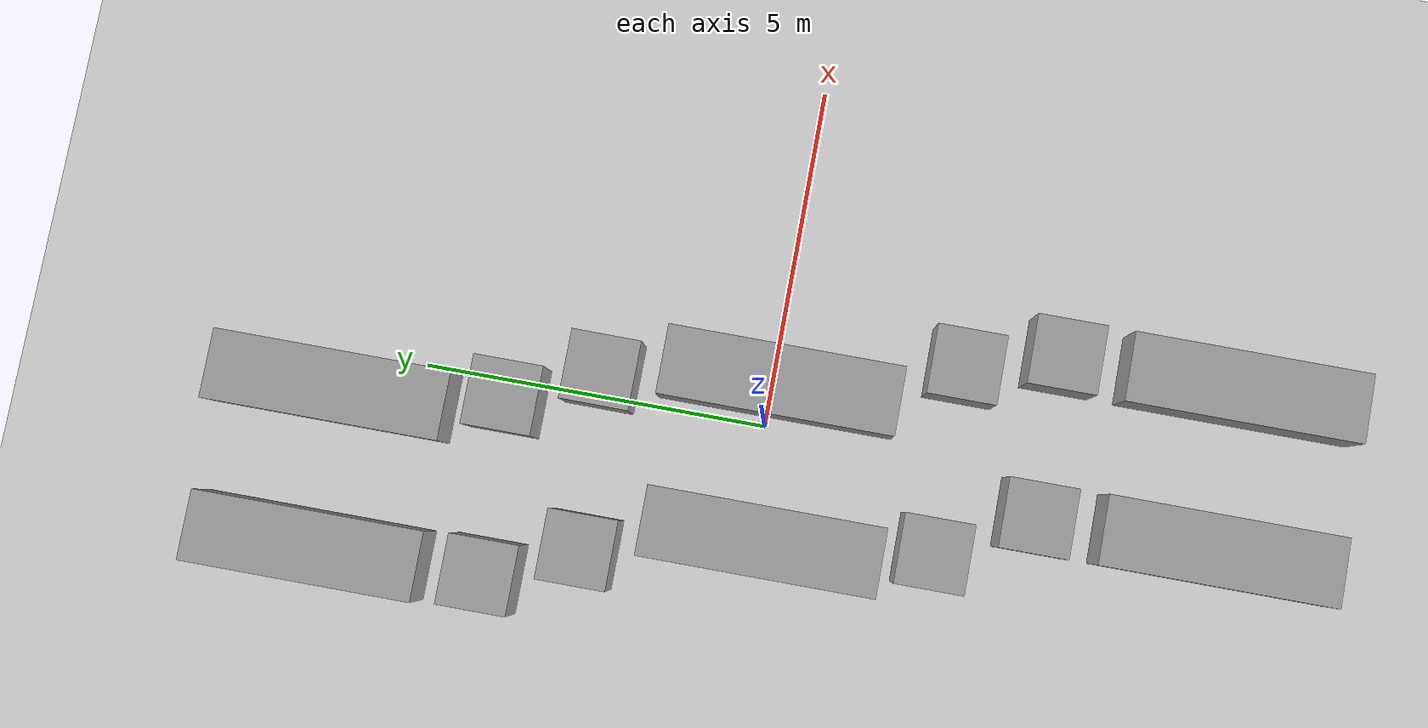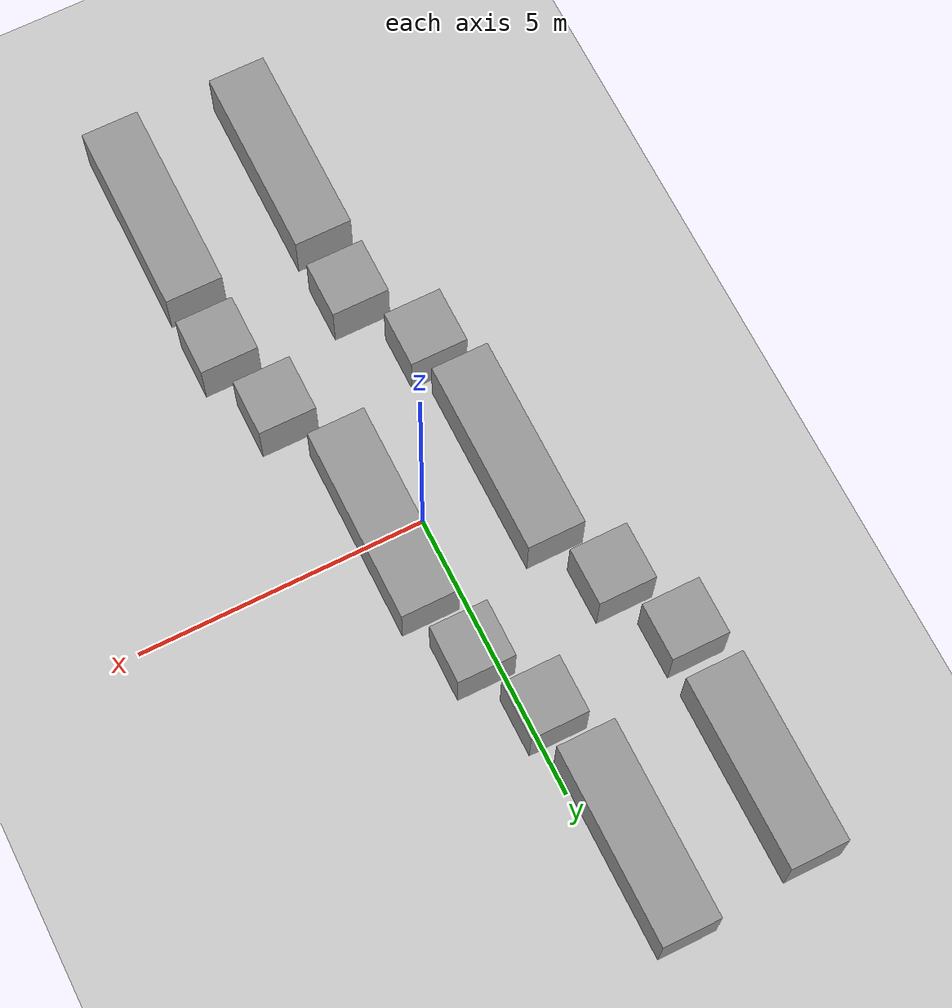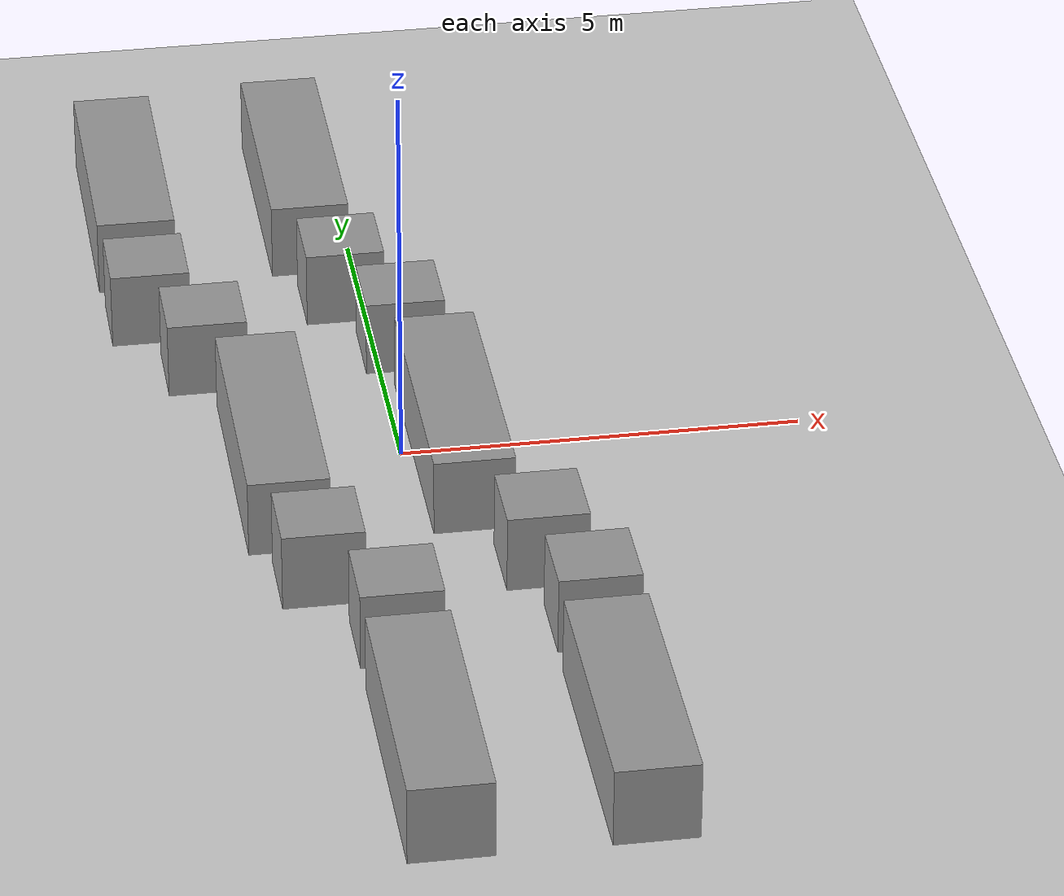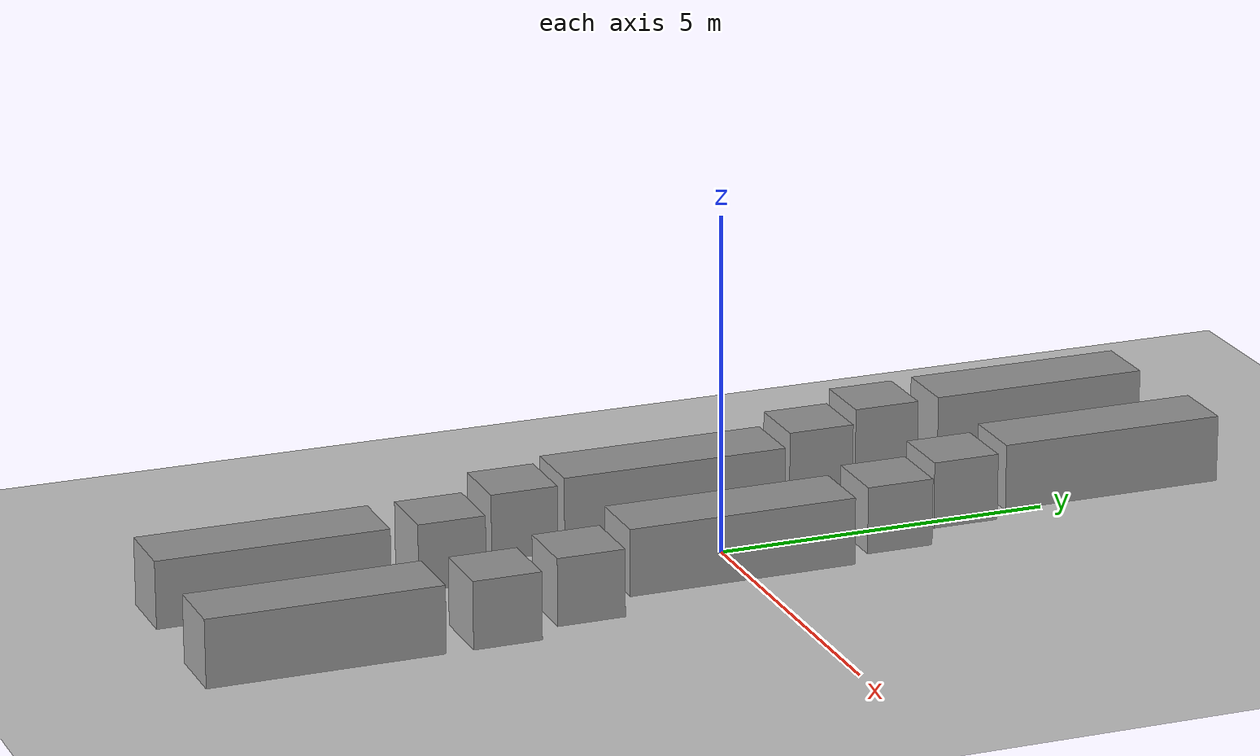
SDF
<sdf version="1.6">
 <world name="default">
  <light name="sun" type="directional">
   <pose>0 0 10 0 -0 0</pose>
   <diffuse>0.8 0.8 0.8 1</diffuse>
   <specular>0.1 0.1 0.1 1</specular>
   <attenuation>
    <range>1000</range>
    <constant>0.9</constant>
    <linear>0.01</linear>
    <quadratic>0.001</quadratic>
   </attenuation>
   <direction>-0.5 0.5 -1</direction>
  </light>
  <model name="ground_plane">
   <static>1</static>
   <link name="link">
    <collision name="collision">
     <geometry><plane><normal>0 0 1</normal><size>100 100</size></plane></geometry>
     <surface><friction><ode><mu>100</mu><mu2>50</mu2></ode></friction></surface>
    </collision>
    <visual name="visual">
     <cast_shadows>0</cast_shadows>
     <geometry><plane><normal>0 0 1</normal><size>100 100</size></plane></geometry>
     <material>
      <script><uri>file://media/materials/scripts/gazebo.material</uri><name>Gazebo/Grey</name></script>
     </material>
    </visual>
   </link>
  </model>
  <gravity>0 0 -1.62</gravity>
  <magnetic_field>6e-06 2.3e-05 -4.2e-05</magnetic_field>
  <atmosphere type="adiabatic"/>
  <physics name="default_physics" default="0" type="ode">
   <max_step_size>0.001</max_step_size>
   <real_time_factor>1</real_time_factor>
   <real_time_update_rate>1000</real_time_update_rate>
  </physics>
  <scene><ambient>0.4 0.4 0.4 1</ambient><background>0.7 0.7 0.7 1</background><shadows>1</shadows></scene>
  <spherical_coordinates>
   <surface_model>EARTH_WGS84</surface_model>
   <latitude_deg>0</latitude_deg>
   <longitude_deg>0</longitude_deg>
   <elevation>0</elevation>
   <heading_deg>0</heading_deg>
  </spherical_coordinates>
  <model name="unit_box_2">
   <pose>-2.19323 2.25959 0.499999 2e-06 -0 0</pose>
   <link name="link">
    <inertial>
     <mass>1</mass>
     <inertia>
      <ixx>0.166667</ixx>
      <ixy>0</ixy>
      <ixz>0</ixz>
      <iyy>0.166667</iyy>
      <iyz>0</iyz>
      <izz>0.166667</izz>
     </inertia>
    </inertial>
    <collision name="collision"><geometry><box><size>1 1 1</size></box></geometry></collision>
    <visual name="visual">
     <geometry><box><size>1 1 1</size></box></geometry>
     <material>
      <script><name>Gazebo/Grey</name><uri>file://media/materials/scripts/gazebo.material</uri></script>
     </material>
    </visual>
   </link>
  </model>
  <model name="unit_box_3">
   <pose>-2.7784 3.55229 0.499999 -2e-06 0 0</pose>
   <link name="link">
    <inertial>
     <mass>1</mass>
     <inertia>
      <ixx>0.166667</ixx>
      <ixy>0</ixy>
      <ixz>0</ixz>
      <iyy>0.166667</iyy>
      <iyz>0</iyz>
      <izz>0.166667</izz>
     </inertia>
    </inertial>
    <collision name="collision"><geometry><box><size>1 1 1</size></box></geometry></collision>
    <visual name="visual">
     <geometry><box><size>1 1 1</size></box></geometry>
     <material>
      <script><name>Gazebo/Grey</name><uri>file://media/materials/scripts/gazebo.material</uri></script>
     </material>
    </visual>
   </link>
  </model>
  <model name="unit_box_6">
   <pose>0.333462 2.41092 0.499999 2e-06 0 -0.004757</pose>
   <link name="link">
    <inertial>
     <mass>1</mass>
     <inertia>
      <ixx>0.166667</ixx>
      <ixy>0</ixy>
      <ixz>0</ixz>
      <iyy>0.166667</iyy>
      <iyz>0</iyz>
      <izz>0.166667</izz>
     </inertia>
    </inertial>
    <collision name="collision"><geometry><box><size>1 1 1</size></box></geometry></collision>
    <visual name="visual">
     <geometry><box><size>1 1 1</size></box></geometry>
     <material>
      <script><name>Gazebo/Grey</name><uri>file://media/materials/scripts/gazebo.material</uri></script>
     </material>
    </visual>
   </link>
  </model>
  <model name="unit_box_7">
   <pose>-0.261214 3.70054 0.499999 2e-06 -0 0</pose>
   <link name="link">
    <inertial>
     <mass>1</mass>
     <inertia>
      <ixx>0.166667</ixx>
      <ixy>0</ixy>
      <ixz>0</ixz>
      <iyy>0.166667</iyy>
      <iyz>0</iyz>
      <izz>0.166667</izz>
     </inertia>
    </inertial>
    <collision name="collision"><geometry><box><size>1 1 1</size></box></geometry></collision>
    <visual name="visual">
     <geometry><box><size>1 1 1</size></box></geometry>
     <material>
      <script><name>Gazebo/Grey</name><uri>file://media/materials/scripts/gazebo.material</uri></script>
     </material>
    </visual>
   </link>
  </model>
  <model name="unit_box_8_0">
   <pose>-2.82079 6.04847 0.499996 -3e-06 -0 1e-06</pose>
   <link name="link">
    <inertial>
     <mass>1</mass>
     <inertia>
      <ixx>0.166667</ixx>
      <ixy>0</ixy>
      <ixz>0</ixz>
      <iyy>0.166667</iyy>
      <iyz>0</iyz>
      <izz>0.166667</izz>
     </inertia>
    </inertial>
    <collision name="collision"><geometry><box><size>1 3.30522 1</size></box></geometry></collision>
    <visual name="visual">
     <geometry><box><size>1 3.30522 1</size></box></geometry>
     <material>
      <script><name>Gazebo/Grey</name><uri>file://media/materials/scripts/gazebo.material</uri></script>
     </material>
    </visual>
   </link>
  </model>
  <model name="unit_box_8_0_clone">
   <pose>-0.555795 6.16973 0.499995 3e-06 -0 0</pose>
   <link name="link">
    <inertial>
     <mass>1</mass>
     <inertia>
      <ixx>0.166667</ixx>
      <ixy>0</ixy>
      <ixz>0</ixz>
      <iyy>0.166667</iyy>
      <iyz>0</iyz>
      <izz>0.166667</izz>
     </inertia>
    </inertial>
    <collision name="collision"><geometry><box><size>1 3.40701 1</size></box></geometry></collision>
    <visual name="visual">
     <geometry><box><size>1 3.40701 1</size></box></geometry>
     <material>
      <script><name>Gazebo/Grey</name><uri>file://media/materials/scripts/gazebo.material</uri></script>
     </material>
    </visual>
   </link>
  </model>
  <model name="unit_box_8_0_clone_0">
   <pose>0.64529 -0.123367 0.499995 -3e-06 0 0</pose>
   <link name="link">
    <inertial>
     <mass>1</mass>
     <inertia>
      <ixx>0.166667</ixx>
      <ixy>0</ixy>
      <ixz>0</ixz>
      <iyy>0.166667</iyy>
      <iyz>0</iyz>
      <izz>0.166667</izz>
     </inertia>
    </inertial>
    <collision name="collision"><geometry><box><size>1 3.40701 1</size></box></geometry></collision>
    <visual name="visual">
     <geometry><box><size>1 3.40701 1</size></box></geometry>
     <material>
      <script><name>Gazebo/Grey</name><uri>file://media/materials/scripts/gazebo.material</uri></script>
     </material>
    </visual>
   </link>
  </model>
  <model name="unit_box_8_0_clone_1">
   <pose>-1.62519 -0.251273 0.499995 3e-06 -0 0</pose>
   <link name="link">
    <inertial>
     <mass>1</mass>
     <inertia>
      <ixx>0.166667</ixx>
      <ixy>0</ixy>
      <ixz>0</ixz>
      <iyy>0.166667</iyy>
      <iyz>0</iyz>
      <izz>0.166667</izz>
     </inertia>
    </inertial>
    <collision name="collision"><geometry><box><size>1 3.40701 1</size></box></geometry></collision>
    <visual name="visual">
     <geometry><box><size>1 3.40701 1</size></box></geometry>
     <material>
      <script><name>Gazebo/Grey</name><uri>file://media/materials/scripts/gazebo.material</uri></script>
     </material>
    </visual>
   </link>
  </model>
  <model name="unit_box_2_clone">
   <pose>-1.36202 -2.6555 0.499999 2e-06 -0 0</pose>
   <link name="link">
    <inertial>
     <mass>1</mass>
     <inertia>
      <ixx>0.166667</ixx>
      <ixy>0</ixy>
      <ixz>0</ixz>
      <iyy>0.166667</iyy>
      <iyz>0</iyz>
      <izz>0.166667</izz>
     </inertia>
    </inertial>
    <collision name="collision"><geometry><box><size>1 1 1</size></box></geometry></collision>
    <visual name="visual">
     <geometry><box><size>1 1 1</size></box></geometry>
     <material>
      <script><name>Gazebo/Grey</name><uri>file://media/materials/scripts/gazebo.material</uri></script>
     </material>
    </visual>
   </link>
  </model>
  <model name="unit_box_2_clone_0">
   <pose>1.32942 -2.66188 0.499999 -2e-06 0 0</pose>
   <link name="link">
    <inertial>
     <mass>1</mass>
     <inertia>
      <ixx>0.166667</ixx>
      <ixy>0</ixy>
      <ixz>0</ixz>
      <iyy>0.166667</iyy>
      <iyz>0</iyz>
      <izz>0.166667</izz>
     </inertia>
    </inertial>
    <collision name="collision"><geometry><box><size>1 1 1</size></box></geometry></collision>
    <visual name="visual">
     <geometry><box><size>1 1 1</size></box></geometry>
     <material>
      <script><name>Gazebo/Grey</name><uri>file://media/materials/scripts/gazebo.material</uri></script>
     </material>
    </visual>
   </link>
  </model>
  <model name="unit_box_2_clone_1">
   <pose>-0.612651 -4.00704 0.499999 -2e-06 0 0</pose>
   <link name="link">
    <inertial>
     <mass>1</mass>
     <inertia>
      <ixx>0.166667</ixx>
      <ixy>0</ixy>
      <ixz>0</ixz>
      <iyy>0.166667</iyy>
      <iyz>0</iyz>
      <izz>0.166667</izz>
     </inertia>
    </inertial>
    <collision name="collision"><geometry><box><size>1 1 1</size></box></geometry></collision>
    <visual name="visual">
     <geometry><box><size>1 1 1</size></box></geometry>
     <material>
      <script><name>Gazebo/Grey</name><uri>file://media/materials/scripts/gazebo.material</uri></script>
     </material>
    </visual>
   </link>
  </model>
  <model name="unit_box_2_clone_2">
   <pose>1.71903 -4.02765 0.499999 0 2e-06 0</pose>
   <link name="link">
    <inertial>
     <mass>1</mass>
     <inertia>
      <ixx>0.166667</ixx>
      <ixy>0</ixy>
      <ixz>0</ixz>
      <iyy>0.166667</iyy>
      <iyz>0</iyz>
      <izz>0.166667</izz>
     </inertia>
    </inertial>
    <collision name="collision"><geometry><box><size>1 1 1</size></box></geometry></collision>
    <visual name="visual">
     <geometry><box><size>1 1 1</size></box></geometry>
     <material>
      <script><name>Gazebo/Grey</name><uri>file://media/materials/scripts/gazebo.material</uri></script>
     </material>
    </visual>
   </link>
  </model>
  <model name="unit_box_8_0_clone_1_clone">
   <pose>-0.607454 -6.61529 0.499995 3e-06 -0 0</pose>
   <link name="link">
    <inertial>
     <mass>1</mass>
     <inertia>
      <ixx>0.166667</ixx>
      <ixy>0</ixy>
      <ixz>0</ixz>
      <iyy>0.166667</iyy>
      <iyz>0</iyz>
      <izz>0.166667</izz>
     </inertia>
    </inertial>
    <collision name="collision"><geometry><box><size>1 3.40701 1</size></box></geometry></collision>
    <visual name="visual">
     <geometry><box><size>1 3.40701 1</size></box></geometry>
     <material>
      <script><name>Gazebo/Grey</name><uri>file://media/materials/scripts/gazebo.material</uri></script>
     </material>
    </visual>
   </link>
  </model>
  <model name="unit_box_8_0_clone_1_clone_0">
   <pose>1.71266 -6.61975 0.499995 3e-06 -0 0</pose>
   <link name="link">
    <inertial>
     <mass>1</mass>
     <inertia>
      <ixx>0.166667</ixx>
      <ixy>0</ixy>
      <ixz>0</ixz>
      <iyy>0.166667</iyy>
      <iyz>0</iyz>
      <izz>0.166667</izz>
     </inertia>
    </inertial>
    <collision name="collision"><geometry><box><size>1 3.40701 1</size></box></geometry></collision>
    <visual name="visual">
     <geometry><box><size>1 3.40701 1</size></box></geometry>
     <material>
      <script><name>Gazebo/Grey</name><uri>file://media/materials/scripts/gazebo.material</uri></script>
     </material>
    </visual>
   </link>
  </model>
 </world>
</sdf>
